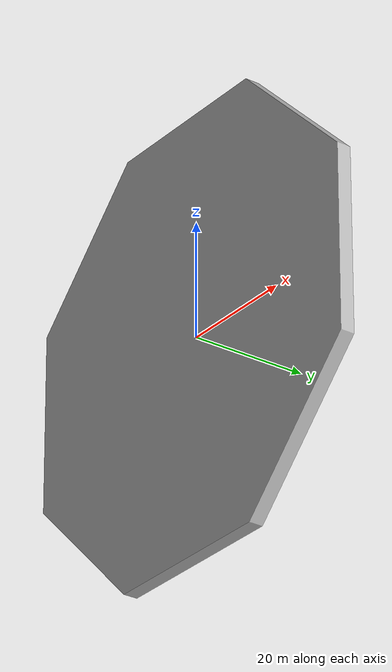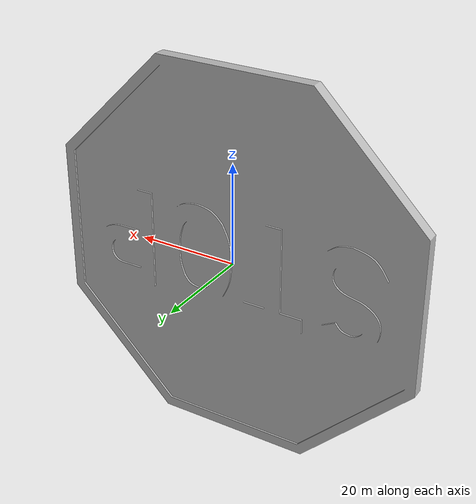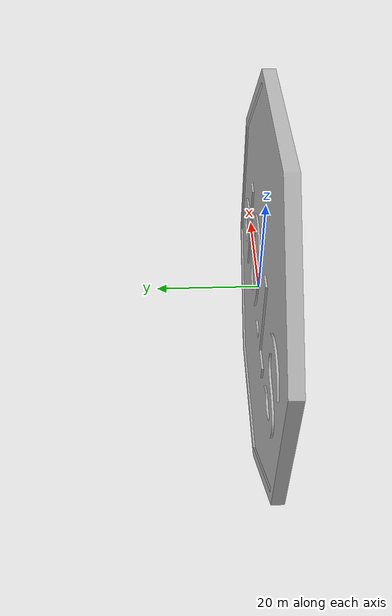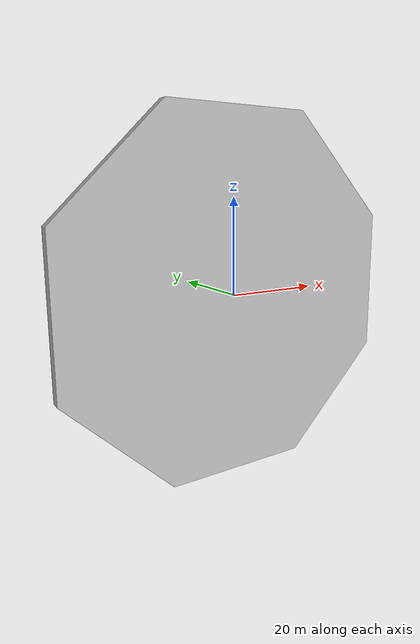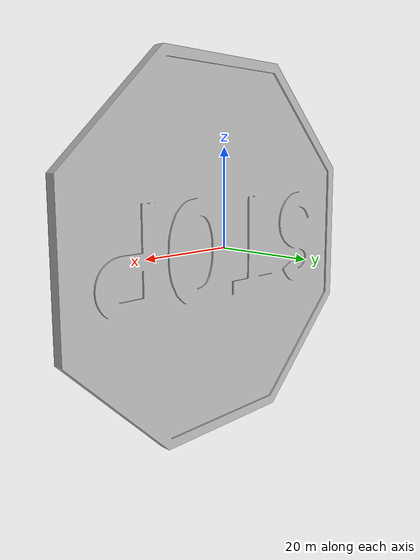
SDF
<?xml version="1.0" ?>
<sdf version="1.6">
    <model name='stop_sign'>
        <static>1</static>
        <link name='link'>
          <collision name='collision'>
            <geometry>
              <mesh>
                <uri>model://stop_sign/meshes/stop_sign.dae</uri>
              </mesh>
            </geometry>
            <max_contacts>10</max_contacts>
            <surface>
              <contact>
                <ode/>
              </contact>
              <bounce/>
              <friction>
                <torsional>
                  <ode/>
                </torsional>
                <ode/>
              </friction>
            </surface>
          </collision>
          <visual name='visual'>
            <geometry>
              <mesh>
                <uri>model://stop_sign/meshes/stop_sign.dae</uri>
              </mesh>
            </geometry>
            <material>
              <script>
                <uri>model://stop_sign/materials/scripts</uri>
                <uri>model://stop_sign/materials/textures</uri>
                <name>StopSign/Diffuse</name>
              </script>
            </material>
          </visual>
          <self_collide>0</self_collide>
          <enable_wind>0</enable_wind>
          <kinematic>0</kinematic>
        </link>
      </model>
</sdf>
